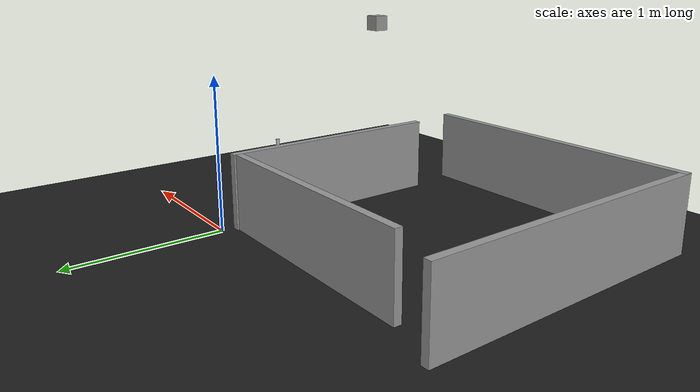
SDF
<sdf version="1.6">
 <world name="default">
  <scene>
   <ambient>0 0 0 1</ambient>
   <shadows>0</shadows>
   <grid>0</grid>
   <background>0.7 0.7 0.7 1</background>
  </scene>
  <include><uri>model://turtlebot3_autorace/zline</uri><pose>1 -1 0.125 0 0 0</pose></include>
  <include><uri>model://turtlebot3_autorace/zline</uri><pose>1 -0.875 0 1.577 0 0</pose></include>
  <include><uri>model://turtlebot3_autorace/zline</uri><pose>0.875 -1 0 0 1.577 0</pose></include>
  <light name="sun" type="directional">
   <pose>0 0 10 0 -0 0</pose>
   <diffuse>0.8 0.8 0.8 1</diffuse>
   <specular>0.1 0.1 0.1 1</specular>
   <attenuation>
    <range>1000</range>
    <constant>0.9</constant>
    <linear>0.01</linear>
    <quadratic>0.001</quadratic>
   </attenuation>
   <direction>-0.5 0.5 -1</direction>
  </light>
  <model name="ground2">
   <pose>0 0 -0.1 0 -0 0</pose>
   <static>1</static>
   <link name="ground">
    <collision name="ground_coll"><geometry><box><size>8 8 0.01</size></box></geometry></collision>
    <visual name="ground_vis">
     <geometry><box><size>20 20 0.01</size></box></geometry>
     <material>
      <script><uri>file://media/materials/scripts/gazebo.material</uri><name>Gazebo/FlatBlack</name></script>
     </material>
    </visual>
   </link>
  </model>
  <gravity>0 0 -9.8</gravity>
  <magnetic_field>6e-06 2.3e-05 -4.2e-05</magnetic_field>
  <atmosphere type="adiabatic"/>
  <physics name="default_physics" default="0" type="ode">
   <max_step_size>0.001</max_step_size>
   <real_time_factor>1</real_time_factor>
   <real_time_update_rate>1000</real_time_update_rate>
  </physics>
  <spherical_coordinates>
   <surface_model>EARTH_WGS84</surface_model>
   <latitude_deg>0</latitude_deg>
   <longitude_deg>0</longitude_deg>
   <elevation>0</elevation>
   <heading_deg>0</heading_deg>
  </spherical_coordinates>
  <light name="user_point_light_2" type="point">
   <pose>-0.948146 0.604519 1 0 -0 0</pose>
   <diffuse>0.5 0.5 0.5 1</diffuse>
   <specular>0.1 0.1 0.1 1</specular>
   <attenuation>
    <range>20</range>
    <constant>0.5</constant>
    <linear>0.01</linear>
    <quadratic>0.001</quadratic>
   </attenuation>
   <cast_shadows>0</cast_shadows>
   <direction>0 0 -1</direction>
  </light>
  <light name="user_point_light_6" type="point">
   <pose>1.63854 1.69565 1 0 -0 0</pose>
   <diffuse>0.5 0.5 0.5 1</diffuse>
   <specular>0.1 0.1 0.1 1</specular>
   <attenuation>
    <range>20</range>
    <constant>0.5</constant>
    <linear>0.01</linear>
    <quadratic>0.001</quadratic>
   </attenuation>
   <cast_shadows>0</cast_shadows>
   <direction>0 0 -1</direction>
  </light>
  <light name="user_point_light_7" type="point">
   <pose>0.42  -3.31 1 0 -0 0</pose>
   <diffuse>0.5 0.5 0.5 1</diffuse>
   <specular>0.1 0.1 0.1 1</specular>
   <attenuation>
    <range>20</range>
    <constant>0.5</constant>
    <linear>0.01</linear>
    <quadratic>0.001</quadratic>
   </attenuation>
   <cast_shadows>0</cast_shadows>
   <direction>0 0 -1</direction>
  </light>
  <light name="user_point_light_8" type="point">
   <pose>-1.8 1.5 1 0 -0 0</pose>
   <diffuse>0.5 0.5 0.5 1</diffuse>
   <specular>0.1 0.1 0.1 1</specular>
   <attenuation>
    <range>20</range>
    <constant>0.5</constant>
    <linear>0.01</linear>
    <quadratic>0.001</quadratic>
   </attenuation>
   <cast_shadows>0</cast_shadows>
   <direction>0 0 -1</direction>
  </light>
  <model name="tunnel_wall_3">
   <link name="Wall_12">
    <pose>-0.980783 0.049883 0 0 -0 1.5708</pose>
    <visual name="Wall_12_Visual">
     <pose>0 0 0.25 0 -0 0</pose>
     <geometry><box><size>2 0.05 0.5</size></box></geometry>
     <material>
      <script><uri>file://media/materials/scripts/gazebo.material</uri><name>Gazebo/Grey</name></script>
      <ambient>1 1 1 1</ambient>
      <diffuse>0.7 0.7 0.7 1</diffuse>
      <specular>0.01 0.01 0.01 1</specular>
      <emissive>0 0 0 1</emissive>
     </material>
    </visual>
    <collision name="Wall_12_Collision">
     <pose>0 0 0.25 0 -0 0</pose>
     <geometry><box><size>2 0.05 0.5</size></box></geometry>
     <surface>
      <friction>
       <ode><mu>1</mu><mu2>1</mu2><fdir1>0 0 0</fdir1><slip1>0</slip1><slip2>0</slip2></ode>
       <torsional>
        <coefficient>1</coefficient>
        <patch_radius>0</patch_radius>
        <surface_radius>0</surface_radius>
        <use_patch_radius>1</use_patch_radius>
        <ode><slip>0</slip></ode>
       </torsional>
      </friction>
      <bounce><restitution_coefficient>0</restitution_coefficient><threshold>1e+06</threshold></bounce>
      <contact>
       <collide_without_contact>0</collide_without_contact>
       <collide_without_contact_bitmask>1</collide_without_contact_bitmask>
       <collide_bitmask>1</collide_bitmask>
       <ode>
        <soft_cfm>0</soft_cfm>
        <soft_erp>0.2</soft_erp>
        <kp>1e+13</kp>
        <kd>1</kd>
        <max_vel>0.01</max_vel>
        <min_depth>0</min_depth>
       </ode>
       <bullet>
        <split_impulse>1</split_impulse>
        <split_impulse_penetration_threshold>-0.01</split_impulse_penetration_threshold>
        <soft_cfm>0</soft_cfm>
        <soft_erp>0.2</soft_erp>
        <kp>1e+13</kp>
        <kd>1</kd>
       </bullet>
      </contact>
     </surface>
    </collision>
   </link>
   <link name="Wall_14">
    <pose>0 -0.935438 0 0 -0 0</pose>
    <visual name="Wall_14_Visual">
     <pose>0 0 0.25 0 -0 0</pose>
     <geometry><box><size>2.00003 0.05 0.5</size></box></geometry>
     <material>
      <script><uri>file://media/materials/scripts/gazebo.material</uri><name>Gazebo/Grey</name></script>
      <ambient>1 1 1 1</ambient>
      <diffuse>0.7 0.7 0.7 1</diffuse>
      <specular>0.01 0.01 0.01 1</specular>
      <emissive>0 0 0 1</emissive>
     </material>
    </visual>
    <collision name="Wall_14_Collision">
     <pose>0 0 0.25 0 -0 0</pose>
     <geometry><box><size>2.00003 0.05 0.5</size></box></geometry>
     <surface>
      <friction>
       <ode><mu>1</mu><mu2>1</mu2><fdir1>0 0 0</fdir1><slip1>0</slip1><slip2>0</slip2></ode>
       <torsional>
        <coefficient>1</coefficient>
        <patch_radius>0</patch_radius>
        <surface_radius>0</surface_radius>
        <use_patch_radius>1</use_patch_radius>
        <ode><slip>0</slip></ode>
       </torsional>
      </friction>
      <bounce><restitution_coefficient>0</restitution_coefficient><threshold>1e+06</threshold></bounce>
      <contact>
       <collide_without_contact>0</collide_without_contact>
       <collide_without_contact_bitmask>1</collide_without_contact_bitmask>
       <collide_bitmask>1</collide_bitmask>
       <ode>
        <soft_cfm>0</soft_cfm>
        <soft_erp>0.2</soft_erp>
        <kp>1e+13</kp>
        <kd>1</kd>
        <max_vel>0.01</max_vel>
        <min_depth>0</min_depth>
       </ode>
       <bullet>
        <split_impulse>1</split_impulse>
        <split_impulse_penetration_threshold>-0.01</split_impulse_penetration_threshold>
        <soft_cfm>0</soft_cfm>
        <soft_erp>0.2</soft_erp>
        <kp>1e+13</kp>
        <kd>1</kd>
       </bullet>
      </contact>
     </surface>
    </collision>
   </link>
   <link name="Wall_16">
    <pose>0.943396 0.183669 0 0 -0 1.5708</pose>
    <inertial>
     <inertia><ixx>nan</ixx><ixy>0</ixy><ixz>0</ixz><iyy>nan</iyy><iyz>0</iyz><izz>nan</izz></inertia>
     <mass>0</mass>
    </inertial>
    <visual name="Wall_16_Visual">
     <pose>0 0 0.25 0 -0 0</pose>
     <geometry><box><size>1.53699 0.05 0.5</size></box></geometry>
     <material>
      <script><uri>file://media/materials/scripts/gazebo.material</uri><name>Gazebo/Grey</name></script>
      <ambient>1 1 1 1</ambient>
      <diffuse>0.7 0.7 0.7 1</diffuse>
      <specular>0.01 0.01 0.01 1</specular>
      <emissive>0 0 0 1</emissive>
     </material>
    </visual>
    <collision name="Wall_16_Collision">
     <pose>0 0 0.25 0 -0 0</pose>
     <geometry><box><size>1.53699 0.05 0.5</size></box></geometry>
     <surface>
      <friction>
       <ode><mu>1</mu><mu2>1</mu2><fdir1>0 0 0</fdir1><slip1>0</slip1><slip2>0</slip2></ode>
       <torsional>
        <coefficient>1</coefficient>
        <patch_radius>0</patch_radius>
        <surface_radius>0</surface_radius>
        <use_patch_radius>1</use_patch_radius>
        <ode><slip>0</slip></ode>
       </torsional>
      </friction>
      <bounce><restitution_coefficient>0</restitution_coefficient><threshold>1e+06</threshold></bounce>
      <contact>
       <collide_without_contact>0</collide_without_contact>
       <collide_without_contact_bitmask>1</collide_without_contact_bitmask>
       <collide_bitmask>1</collide_bitmask>
       <ode>
        <soft_cfm>0</soft_cfm>
        <soft_erp>0.2</soft_erp>
        <kp>1e+13</kp>
        <kd>1</kd>
        <max_vel>0.01</max_vel>
        <min_depth>0</min_depth>
       </ode>
       <bullet>
        <split_impulse>1</split_impulse>
        <split_impulse_penetration_threshold>-0.01</split_impulse_penetration_threshold>
        <soft_cfm>0</soft_cfm>
        <soft_erp>0.2</soft_erp>
        <kp>1e+13</kp>
        <kd>1</kd>
       </bullet>
      </contact>
     </surface>
    </collision>
   </link>
   <link name="Wall_17">
    <pose>0.15 0.915 0 0 -0 3.14159</pose>
    <visual name="Wall_17_Visual">
     <pose>0 0 0.25 0 -0 0</pose>
     <geometry><box><size>1.58 0.05 0.5</size></box></geometry>
     <material>
      <script><uri>file://media/materials/scripts/gazebo.material</uri><name>Gazebo/Grey</name></script>
      <ambient>1 1 1 1</ambient>
      <diffuse>0.7 0.7 0.7 1</diffuse>
      <specular>0.01 0.01 0.01 1</specular>
      <emissive>0 0 0 1</emissive>
     </material>
    </visual>
    <collision name="Wall_17_Collision">
     <pose>0 0 0.25 0 -0 0</pose>
     <geometry><box><size>1.58 0.05 0.5</size></box></geometry>
     <surface>
      <friction>
       <ode><mu>1</mu><mu2>1</mu2><fdir1>0 0 0</fdir1><slip1>0</slip1><slip2>0</slip2></ode>
       <torsional>
        <coefficient>1</coefficient>
        <patch_radius>0</patch_radius>
        <surface_radius>0</surface_radius>
        <use_patch_radius>1</use_patch_radius>
        <ode><slip>0</slip></ode>
       </torsional>
      </friction>
      <bounce><restitution_coefficient>0</restitution_coefficient><threshold>1e+06</threshold></bounce>
      <contact>
       <collide_without_contact>0</collide_without_contact>
       <collide_without_contact_bitmask>1</collide_without_contact_bitmask>
       <collide_bitmask>1</collide_bitmask>
       <ode>
        <soft_cfm>0</soft_cfm>
        <soft_erp>0.2</soft_erp>
        <kp>1e+13</kp>
        <kd>1</kd>
        <max_vel>0.01</max_vel>
        <min_depth>0</min_depth>
       </ode>
       <bullet>
        <split_impulse>1</split_impulse>
        <split_impulse_penetration_threshold>-0.01</split_impulse_penetration_threshold>
        <soft_cfm>0</soft_cfm>
        <soft_erp>0.2</soft_erp>
        <kp>1e+13</kp>
        <kd>1</kd>
       </bullet>
      </contact>
     </surface>
    </collision>
   </link>
   <static>1</static>
   <pose>-0.964699 -1.03574 0 0 -0 0</pose>
  </model>
  <model name="unit_box2">
   <pose>-1.3  -1.7 0.12 0 0 -0.0</pose>
   <scale>1 1 1</scale>
   <link name="traffic_bar">
    <pose>-1.3  -1.7 0.12 0 0 -0.0</pose>
    <velocity>0 0 0 0 -0 0</velocity>
    <acceleration>1.06648 0.03546 4.20605 2.1745 -1.41657 3.10996</acceleration>
    <wrench>1.06648 0.03546 4.20605 0 -0 0</wrench>
   </link>
   <static>1</static>
  </model>
  <model name="unit_box3">
   <link name="Wall_116">
    <pose>0.0 -1.25 1.0 0 -0 1.5708</pose>
    <inertial>
     <inertia><ixx>nan</ixx><ixy>0</ixy><ixz>0</ixz><iyy>nan</iyy><iyz>0</iyz><izz>nan</izz></inertia>
     <mass>0</mass>
    </inertial>
    <visual name="Wall_116_Visual">
     <pose>0 0 0.25 0 -0 0</pose>
     <geometry><box><size>0.1 0.1 0.1</size></box></geometry>
     <material>
      <script><uri>file://media/materials/scripts/gazebo.material</uri><name>Gazebo/Grey</name></script>
      <ambient>1 1 1 1</ambient>
      <diffuse>0.7 0.7 0.7 1</diffuse>
      <specular>0.01 0.01 0.01 1</specular>
      <emissive>0 0 0 1</emissive>
     </material>
    </visual>
    <collision name="Wall_116_Collision">
     <pose>0 0 0.25 0 -0 0</pose>
     <geometry><box><size>0.1 0.1 0.1</size></box></geometry>
     <surface>
      <friction>
       <ode><mu>1</mu><mu2>1</mu2><fdir1>0 0 0</fdir1><slip1>0</slip1><slip2>0</slip2></ode>
       <torsional>
        <coefficient>1</coefficient>
        <patch_radius>0</patch_radius>
        <surface_radius>0</surface_radius>
        <use_patch_radius>1</use_patch_radius>
        <ode><slip>0</slip></ode>
       </torsional>
      </friction>
      <bounce><restitution_coefficient>0</restitution_coefficient><threshold>1e+06</threshold></bounce>
      <contact>
       <collide_without_contact>0</collide_without_contact>
       <collide_without_contact_bitmask>1</collide_without_contact_bitmask>
       <collide_bitmask>1</collide_bitmask>
       <ode>
        <soft_cfm>0</soft_cfm>
        <soft_erp>0.2</soft_erp>
        <kp>1e+13</kp>
        <kd>1</kd>
        <max_vel>0.01</max_vel>
        <min_depth>0</min_depth>
       </ode>
       <bullet>
        <split_impulse>1</split_impulse>
        <split_impulse_penetration_threshold>-0.01</split_impulse_penetration_threshold>
        <soft_cfm>0</soft_cfm>
        <soft_erp>0.2</soft_erp>
        <kp>1e+13</kp>
        <kd>1</kd>
       </bullet>
      </contact>
     </surface>
    </collision>
   </link>
   <static>1</static>
  </model>
 </world>
</sdf>

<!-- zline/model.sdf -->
<sdf version="1.6">
  <model name="zline">
    <static>false</static>
    <link name="box">
      <pose>0 0 0 0 0 0</pose>
      <collision name="collision">
        <geometry>
          <cylinder>
             <radius>0.015</radius>
             <length>0.25</length>
          </cylinder>
        </geometry>
      </collision>
      <visual name="visual">
        <geometry>
          <cylinder>
             <radius>0.015</radius>
             <length>0.25</length>
          </cylinder>
        </geometry>
        <material>
          <script>
            <uri>model://turtlebot3_autorace/zline/materials/scripts</uri>
            <uri>model://turtlebot3_autorace/zline/materials/textures</uri>
            <name>zline</name>
          </script>
        </material>
      </visual>
    </link>
  </model>
</sdf>
